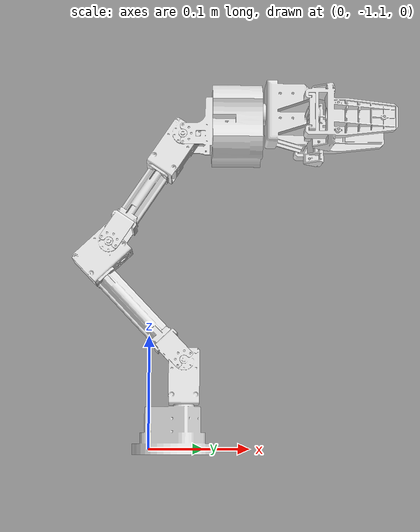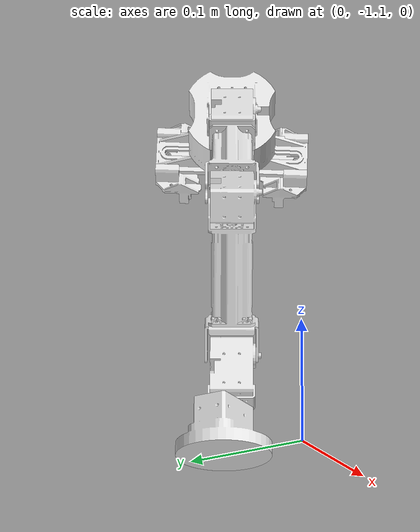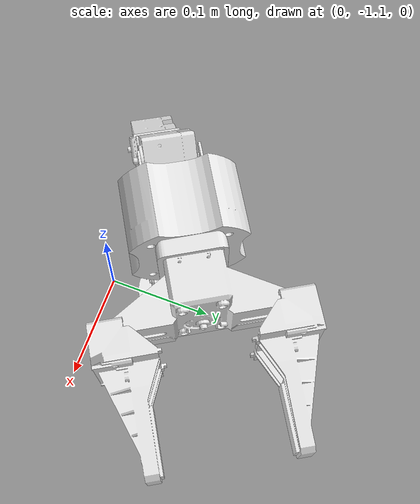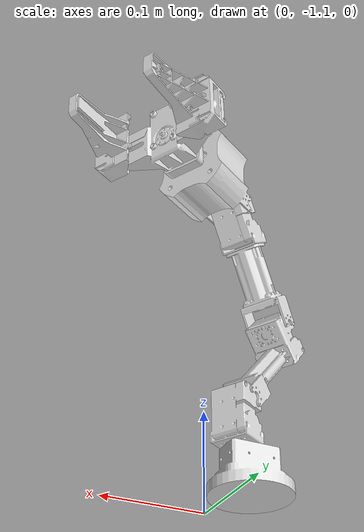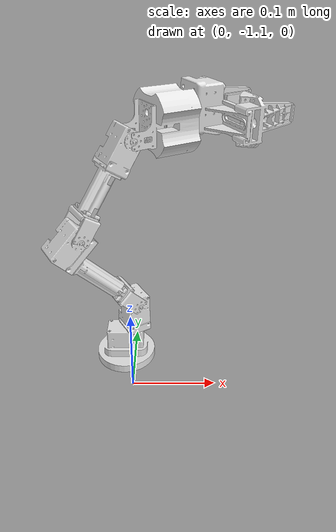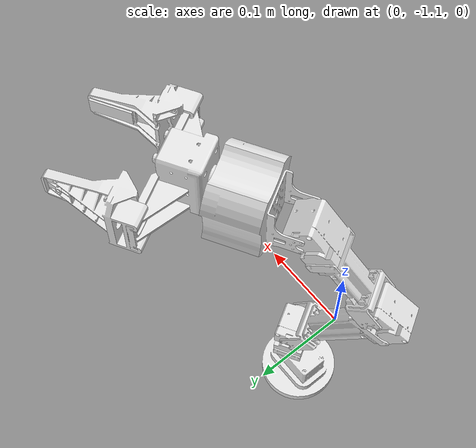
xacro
<?xml version="1.0" encoding="utf-8"?>
<robot xmlns:xacro="http://www.ros.org/wiki/xacro" name="complete_arm_assembly">

  <link name="base_link">
    <inertial>
      <origin xyz="0 0 0" rpy="0 0 0" />
      <mass value="0.5" />
      <inertia ixx="0.002" ixy="0" ixz="0" iyy="0.002" iyz="0" izz="0.002" />
    </inertial>
    <visual>
      <origin xyz="0 0 0" rpy="0 0 0" />
      <geometry>
        <mesh filename="file:///home/ri-one/Open-Manipulator-X-6/complete_arm_assembly/meshes/base_link.STL" />
      </geometry>
      <material name=""><color rgba="0.894 0.894 0.894 1" /></material>
    </visual>
    <collision>
      <origin xyz="0 0 0" rpy="0 0 0" />
      <geometry>
        <mesh filename="file:///home/ri-one/Open-Manipulator-X-6/complete_arm_assembly/meshes/base_link.STL" />
      </geometry>
    </collision>
  </link>

  <link name="link_1">
    <inertial>
      <origin xyz="0 0.027 0" rpy="0 0 0" />
      <mass value="0.3" />
      <inertia ixx="0.001" ixy="0" ixz="0" iyy="0.001" iyz="0" izz="0.001" />
    </inertial>
    <visual>
      <origin xyz="0 0 0" rpy="0 0 0" />
      <geometry>
        <mesh filename="file:///home/ri-one/Open-Manipulator-X-6/complete_arm_assembly/meshes/link_1.STL" />
      </geometry>
      <material name=""><color rgba="0.894 0.894 0.894 1" /></material>
    </visual>
    <collision>
      <origin xyz="0 0 0" rpy="0 0 0" />
      <geometry>
        <mesh filename="file:///home/ri-one/Open-Manipulator-X-6/complete_arm_assembly/meshes/link_1.STL" />
      </geometry>
    </collision>
  </link>

  <joint name="joint_1" type="revolute">
    <origin xyz="-0.00078087 -1.0373 0.041025" rpy="1.5708 0 0.52968" />
    <parent link="base_link" />
    <child link="link_1" />
    <axis xyz="0 1 0" />
    <limit lower="-3.14" upper="3.14" effort="15" velocity="1" />
    <dynamics damping="0.2" friction="0.1"/>
  </joint>

  <link name="link_2">
    <inertial>
      <origin xyz="0 0.104 0" rpy="0 0 0" />
      <mass value="0.3" />
      <inertia ixx="0.001" ixy="0" ixz="0" iyy="0.001" iyz="0" izz="0.001" />
    </inertial>
    <visual>
      <origin xyz="0 0 0" rpy="0 0 0" />
      <geometry>
        <mesh filename="file:///home/ri-one/Open-Manipulator-X-6/complete_arm_assembly/meshes/link_2.STL" />
      </geometry>
      <material name=""><color rgba="0.894 0.894 0.894 1" /></material>
    </visual>
    <collision>
      <origin xyz="0 0 0" rpy="0 0 0" />
      <geometry>
        <mesh filename="file:///home/ri-one/Open-Manipulator-X-6/complete_arm_assembly/meshes/link_2.STL" />
      </geometry>
    </collision>
  </link>

  <joint name="joint_2" type="revolute">
    <origin xyz="0 0.040505 0" rpy="0 0 0.75692" />
    <parent link="link_1" />
    <child link="link_2" />
    <axis xyz="0 0 1" />
    <limit lower="-1.57" upper="1.57" effort="15" velocity="1" />
    <dynamics damping="0.2" friction="0.1"/>
  </joint>

  <link name="link_3">
    <inertial>
      <origin xyz="0.093 0 0" rpy="0 0 0" />
      <mass value="0.3" />
      <inertia ixx="0.001" ixy="0" ixz="0" iyy="0.001" iyz="0" izz="0.001" />
    </inertial>
    <visual>
      <origin xyz="0 0 0" rpy="0 0 0" />
      <geometry>
        <mesh filename="file:///home/ri-one/Open-Manipulator-X-6/complete_arm_assembly/meshes/link_3.STL" />
      </geometry>
      <material name=""><color rgba="0.894 0.894 0.894 1" /></material>
    </visual>
    <collision>
      <origin xyz="0 0 0" rpy="0 0 0" />
      <geometry>
        <mesh filename="file:///home/ri-one/Open-Manipulator-X-6/complete_arm_assembly/meshes/link_3.STL" />
      </geometry>
    </collision>
  </link>

  <joint name="joint_3" type="revolute">
    <origin xyz="0.024 0.128 0" rpy="0 0 0.23095" />
    <parent link="link_2" />
    <child link="link_3" />
    <axis xyz="0 0 1" />
    <limit lower="-1.57" upper="1.57" effort="15" velocity="1" />
    <dynamics damping="0.2" friction="0.1"/>
  </joint>

  <link name="link_4">
    <inertial>
      <origin xyz="0.05 0.01 0" rpy="0 0 0" />
      <mass value="0.4" />
      <inertia ixx="0.002" ixy="0" ixz="0" iyy="0.002" iyz="0" izz="0.002" />
    </inertial>
    <visual>
      <origin xyz="0 0 0" rpy="0 0 0" />
      <geometry>
        <mesh filename="file:///home/ri-one/Open-Manipulator-X-6/complete_arm_assembly/meshes/link_4.STL" />
      </geometry>
      <material name=""><color rgba="0.894 0.894 0.894 1" /></material>
    </visual>
    <collision>
      <origin xyz="0 0 0" rpy="0 0 0" />
      <geometry>
        <mesh filename="file:///home/ri-one/Open-Manipulator-X-6/complete_arm_assembly/meshes/link_4.STL" />
      </geometry>
    </collision>
  </link>

  <joint name="joint_4" type="revolute">
    <origin xyz="0.124 0 0" rpy="0 0 -0.98787" />
    <parent link="link_3" />
    <child link="link_4" />
    <axis xyz="0 0 1" />
    <limit lower="-1" upper="2." effort="15" velocity="1" />
    <dynamics damping="0.2" friction="0.1"/>
  </joint>

  <link name="link_5">
    <inertial>
      <origin xyz="0.015 -0.002 0" rpy="0 0 0" />
      <mass value="0.2" />
      <inertia ixx="0.001" ixy="0" ixz="0" iyy="0.001" iyz="0" izz="0.001" />
    </inertial>
    <visual>
      <origin xyz="0 0 0" rpy="0 0 0" />
      <geometry>
        <mesh filename="file:///home/ri-one/Open-Manipulator-X-6/complete_arm_assembly/meshes/link_5.STL" />
      </geometry>
      <material name=""><color rgba="0.894 0.894 0.894 1" /></material>
    </visual>
    <collision>
      <origin xyz="0 0 0" rpy="0 0 0" />
      <geometry>
        <mesh filename="file:///home/ri-one/Open-Manipulator-X-6/complete_arm_assembly/meshes/link_5.STL" />
      </geometry>
    </collision>
  </link>

  <joint name="joint_5" type="revolute">
    <origin xyz="0.086402 0.02425 0.0005" rpy="0.036324 0 0" />
    <parent link="link_4" />
    <child link="link_5" />
    <axis xyz="1 0 0" />
    <limit lower="-3.14" upper="3.14" effort="10" velocity="1" />
    <dynamics damping="1.0" friction="0.5"/>
  </joint>

  <link name="left_finger">
    <inertial>
      <origin xyz="0 0 0" rpy="0 0 0" />
      <mass value="0.05" />
      <inertia ixx="0.292" ixy="0" ixz="0"
                           iyy="0.159" iyz="0"
                                       izz="0.133" />
    </inertial>
    <visual>
      <origin xyz="0 0 0" rpy="0 0 0" />
      <geometry>
        <mesh filename="file:///home/ri-one/Open-Manipulator-X-6/complete_arm_assembly/meshes/left_finger.STL" />
      </geometry>
      <material name=""><color rgba="0.894 0.894 0.894 1" /></material>
    </visual>
    <collision>
      <origin xyz="0 0 0" rpy="0 0 0" />
      <geometry>
        <mesh filename="file:///home/ri-one/Open-Manipulator-X-6/complete_arm_assembly/meshes/left_finger.STL" />
      </geometry>
    </collision>
  </link>

  <joint name="left_finger_joint" type="prismatic">
    <origin xyz="-0.019263 -1.6285 -1.7856" rpy="0 0 0" />
    <parent link="link_5" />
    <child link="left_finger" />
    <axis xyz="0 0 1" />
    <limit lower="0" upper="0.019" effort="5" velocity="0.1" />
    <dynamics damping="50.0" friction="5.0"/>
  </joint>

  <link name="right_finger">
    <inertial>
      <origin xyz="0 0 0" rpy="0 0 0" />
      <mass value="0.05" />
      <inertia ixx="0.288" ixy="0" ixz="0"
                           iyy="0.159" iyz="0"
                                       izz="0.129" />
    </inertial>
    <visual>
      <origin xyz="0 0 0" rpy="0 0 0" />
      <geometry>
        <mesh filename="file:///home/ri-one/Open-Manipulator-X-6/complete_arm_assembly/meshes/right_finger.STL" />
      </geometry>
      <material name=""><color rgba="0.894 0.894 0.894 1" /></material>
    </visual>
    <collision>
      <origin xyz="0 0 0" rpy="0 0 0" />
      <geometry>
        <mesh filename="file:///home/ri-one/Open-Manipulator-X-6/complete_arm_assembly/meshes/right_finger.STL" />
      </geometry>
    </collision>
  </link>

  <joint name="right_finger_joint" type="prismatic">
    <origin xyz="-0.019263 1.6058 1.7856" rpy="-3.1416 0 0" />
    <parent link="link_5" />
    <child link="right_finger" />
    <axis xyz="0 0 -1" />
    <limit lower="-0.019" upper="0.0" effort="5" velocity="0.1" />
    <dynamics damping="50.0" friction="5.0"/>
  </joint>

  <ros2_control name="GazeboSystem" type="system">
    <hardware>
      <plugin>gazebo_ros2_control/GazeboSystem</plugin>
    </hardware>
    <joint name="joint_1">
      <command_interface name="position"/>
      <state_interface name="position"/>
      <state_interface name="velocity"/>
    </joint>
    <joint name="joint_2">
      <command_interface name="position"/>
      <state_interface name="position"/>
      <state_interface name="velocity"/>
    </joint>
    <joint name="joint_3">
      <command_interface name="position"/>
      <state_interface name="position"/>
      <state_interface name="velocity"/>
    </joint>
    <joint name="joint_4">
      <command_interface name="position"/>
      <state_interface name="position"/>
      <state_interface name="velocity"/>
    </joint>
    <joint name="joint_5">
      <command_interface name="position"/>
      <state_interface name="position"/>
      <state_interface name="velocity"/>
    </joint>
    <joint name="left_finger_joint">
      <command_interface name="position"/>
      <state_interface name="position"/>
      <state_interface name="velocity"/>
    </joint>
    <joint name="right_finger_joint">
      <command_interface name="position"/>
      <state_interface name="position"/>
      <state_interface name="velocity"/>
    </joint>
  </ros2_control>

  <link name="world"/>
  <joint name="world_to_base_joint" type="fixed">
    <parent link="world"/>
    <child link="base_link"/>
    <origin xyz="0 0 0" rpy="0 0 0"/>
  </joint>

  <gazebo reference="left_finger">
    <self_collide>false</self_collide>
  </gazebo>
  <gazebo reference="right_finger">
    <self_collide>false</self_collide>
  </gazebo>

  <gazebo>
    <plugin name="gazebo_ros2_control" filename="libgazebo_ros2_control.so">
      <parameters>$(find complete_arm_assembly)/config/arm_controllers.yaml</parameters>
      <robot_param>robot_description</robot_param>
      <robot_param_node>robot_state_publisher</robot_param_node>
    </plugin>
  </gazebo>

</robot>
